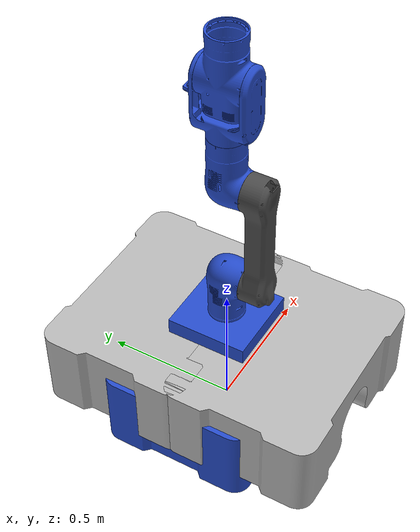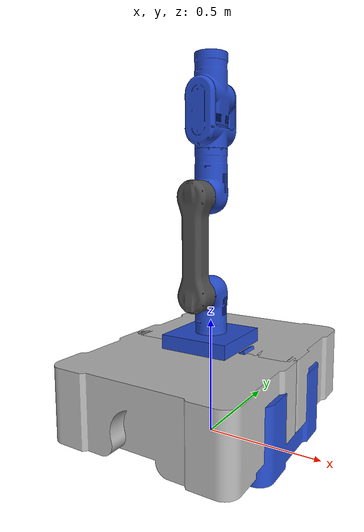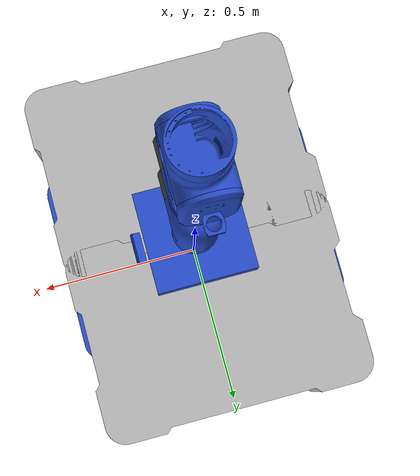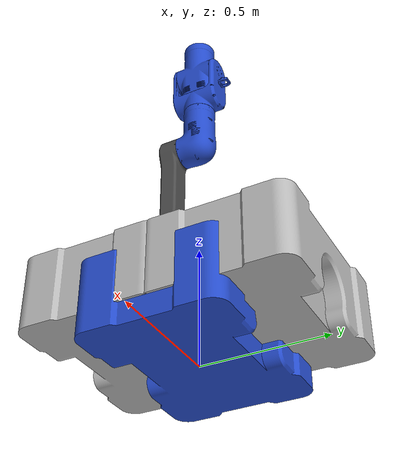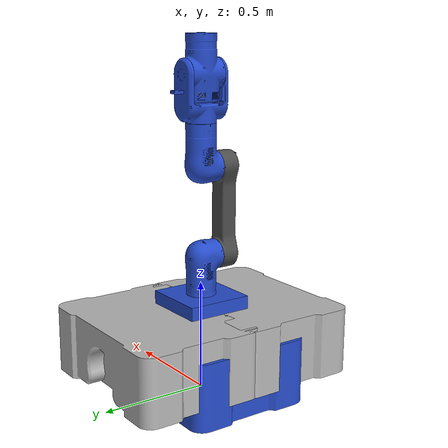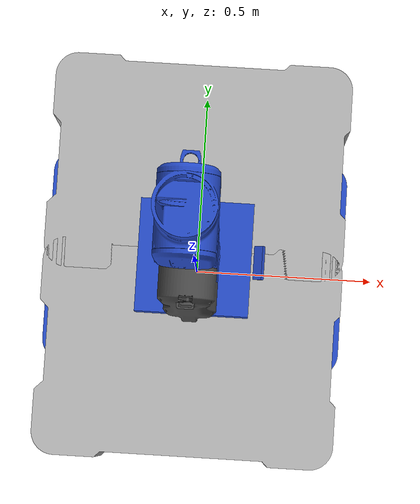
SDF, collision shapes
<sdf version='1.7'>
  <model name='relax'>
    <joint name='world_joint' type='fixed'>
      <pose relative_to='__model__'>0 0 0 0 -0 0</pose>
      <parent>world</parent>
      <child>base_link</child>
    </joint>
    <link name='base_link'>
      <pose relative_to='world_joint'>0 0 0 0 -0 0</pose>
      <inertial>
        <pose>0.00099 -0.001335 0.035182 0 -0 0</pose>
        <mass>107.467</mass>
        <inertia>
          <ixx>19.0537</ixx>
          <ixy>-0.00172707</ixy>
          <ixz>-0.0386888</ixz>
          <iyy>19.0565</iyy>
          <iyz>0.0869808</iyz>
          <izz>17.2117</izz>
        </inertia>
      </inertial>
      <collision name='base_link_fixed_joint_lump__mobile_base_link_collision'>
        <pose>0 0 0 0 -0 0</pose>
        <geometry>
          <mesh>
            <scale>0.001 0.001 0.001</scale>
            <uri>model://relax_urdf/meshes/mir_base.stl</uri>
          </mesh>
        </geometry>
      </collision>
      <collision name='base_link_fixed_joint_lump__control_box_collision_1'>
        <pose>0 0 0.375 0 -0 0</pose>
        <geometry>
          <box>
            <size>0.3 0.3 0.15</size>
          </box>
        </geometry>
      </collision>
      <collision name='base_link_fixed_joint_lump__D435i_camera_link_collision_2'>
        <pose>0.174007 0 0.38597 0 -0.5 0</pose>
        <geometry>
          <box>
            <size>0.02505 0.09 0.025</size>
          </box>
        </geometry>
        <surface>
          <contact>
            <ode>
              <kp>1e+13</kp>
              <kd>1</kd>
            </ode>
          </contact>
          <friction>
            <ode>
              <mu2>1</mu2>
              <fdir1>0 0 0</fdir1>
            </ode>
          </friction>
        </surface>
      </collision>
      <collision name='base_link_fixed_joint_lump__relax_link1_collision_3'>
        <pose>0 0 0.375 -3.14159 0 0</pose>
        <geometry>
          <mesh>
            <scale>0.001 0.001 0.001</scale>
            <uri>model://relax_urdf/meshes/mesh_link1.stl</uri>
          </mesh>
        </geometry>
        <surface>
          <contact>
            <ode/>
          </contact>
          <friction>
            <ode/>
          </friction>
        </surface>
      </collision>
      <visual name='base_link_fixed_joint_lump__mobile_base_link_visual'>
        <pose>0 0 0 0 -0 0</pose>
        <geometry>
          <mesh>
            <scale>0.001 0.001 0.001</scale>
            <uri>model://relax_urdf/meshes/mir_base.stl</uri>
          </mesh>
        </geometry>
      </visual>
      <visual name='base_link_fixed_joint_lump__control_box_visual_1'>
        <pose>0 0 0.375 0 -0 0</pose>
        <geometry>
          <box>
            <size>0.3 0.3 0.15</size>
          </box>
        </geometry>
      </visual>
      <visual name='base_link_fixed_joint_lump__D435i_camera_link_visual_2'>
        <pose>0.187083 0 0.393113 1.0708 -0 1.5708</pose>
        <geometry>
          <mesh>
            <scale>1 1 1</scale>
            <uri>model://realsense2_description/meshes/d435.dae</uri>
          </mesh>
        </geometry>
      </visual>
      <visual name='base_link_fixed_joint_lump__relax_link1_visual_3'>
        <pose>0 0 0.375 -3.14159 0 0</pose>
        <geometry>
          <mesh>
            <scale>0.001 0.001 0.001</scale>
            <uri>model://relax_urdf/meshes/mesh_link1.stl</uri>
          </mesh>
        </geometry>
        <material>
          <script>
            <name>Gazebo/Blue</name>
            <uri>file://media/materials/scripts/gazebo.material</uri>
          </script>
        </material>
      </visual>
      <self_collide>0</self_collide>
      <enable_wind>0</enable_wind>
      <kinematic>0</kinematic>
      <sensor name='D435i_cameracolor' type='camera'>
        <camera name='D435i_camera'>
          <horizontal_fov>1.21126</horizontal_fov>
          <image>
            <width>1280</width>
            <height>720</height>
            <format>RGB_INT8</format>
          </image>
          <clip>
            <near>0.1</near>
            <far>100</far>
          </clip>
          <noise>
            <type>gaussian</type>
            <mean>0</mean>
            <stddev>0.007</stddev>
          </noise>
        </camera>
        <always_on>1</always_on>
        <update_rate>30</update_rate>
        <visualize>0</visualize>
        <pose>0.174007 0.0175 0.38597 0 -0.5 0</pose>
      </sensor>
      <sensor name='D435i_cameraired1' type='camera'>
        <camera name='D435i_camera'>
          <horizontal_fov>1.48702</horizontal_fov>
          <image>
            <width>1280</width>
            <height>720</height>
            <format>L_INT8</format>
          </image>
          <clip>
            <near>0.1</near>
            <far>100</far>
          </clip>
          <noise>
            <type>gaussian</type>
            <mean>0</mean>
            <stddev>0.05</stddev>
          </noise>
        </camera>
        <always_on>1</always_on>
        <update_rate>90</update_rate>
        <visualize>0</visualize>
        <pose>0.174007 0.0175 0.38597 0 -0.5 0</pose>
      </sensor>
      <sensor name='D435i_cameraired2' type='camera'>
        <camera name='D435i_camera'>
          <horizontal_fov>1.48702</horizontal_fov>
          <image>
            <width>1280</width>
            <height>720</height>
            <format>L_INT8</format>
          </image>
          <clip>
            <near>0.1</near>
            <far>100</far>
          </clip>
          <noise>
            <type>gaussian</type>
            <mean>0</mean>
            <stddev>0.05</stddev>
          </noise>
        </camera>
        <always_on>1</always_on>
        <update_rate>90</update_rate>
        <visualize>0</visualize>
        <pose>0.174007 0.0175 0.38597 0 -0.5 0</pose>
      </sensor>
      <sensor name='D435i_cameradepth' type='depth'>
        <camera name='D435i_camera'>
          <horizontal_fov>1.21126</horizontal_fov>
          <image>
            <width>1280</width>
            <height>720</height>
          </image>
          <clip>
            <near>0.1</near>
            <far>100</far>
          </clip>
          <noise>
            <type>gaussian</type>
            <mean>0</mean>
            <stddev>0.1</stddev>
          </noise>
        </camera>
        <always_on>1</always_on>
        <update_rate>30</update_rate>
        <visualize>0</visualize>
        <pose>0.174007 0.0175 0.38597 0 -0.5 0</pose>
      </sensor>
      <sensor name='D435i_cameraaccel' type='imu'>
        <always_on>1</always_on>
        <update_rate>300</update_rate>
        <topic>D435i_camera/accel/sample</topic>
        <plugin name='D435i/D435i_camera_accel_plugin' filename='librealsense_gazebo_accel_sensor.so'>
          <topicName>D435i_camera/accel/sample</topicName>
          <bodyName>D435i_camera_link</bodyName>
          <updateRateHZ>300</updateRateHZ>
          <gaussianNoise>0.1</gaussianNoise>
          <xyzOffset>0 0 0</xyzOffset>
          <rpyOffset>0 0 0</rpyOffset>
          <frameName>D435i_camera_accel_optical_frame</frameName>
          <initialOrientationAsReference>0</initialOrientationAsReference>
        </plugin>
        <pose>0.174007 0.0175 0.38597 0 -0.5 0</pose>
      </sensor>
      <sensor name='D435i_cameragyro' type='imu'>
        <always_on>1</always_on>
        <update_rate>300</update_rate>
        <topic>D435i_camera/gyro/sample</topic>
        <plugin name='D435i/D435i_camera_gyro_plugin' filename='librealsense_gazebo_gyro_sensor.so'>
          <topicName>D435i_camera/gyro/sample</topicName>
          <bodyName>D435i_camera_link</bodyName>
          <updateRateHZ>300</updateRateHZ>
          <gaussianNoise>0.1</gaussianNoise>
          <xyzOffset>0 0 0</xyzOffset>
          <rpyOffset>0 0 0</rpyOffset>
          <frameName>D435i_camera_gyro_optical_frame</frameName>
          <initialOrientationAsReference>0</initialOrientationAsReference>
        </plugin>
        <pose>0.174007 0.0175 0.38597 0 -0.5 0</pose>
      </sensor>
    </link>
    <joint name='joint1' type='revolute'>
      <pose relative_to='base_link'>0 -0.13166 0.62466 -3.14159 0 0</pose>
      <parent>base_link</parent>
      <child>relax_link2</child>
      <axis>
        <xyz>0 1 0</xyz>
        <limit>
          <lower>-3.14</lower>
          <upper>3.14</upper>
          <effort>147</effort>
          <velocity>3.86</velocity>
        </limit>
        <dynamics>
          <damping>0.2</damping>
          <friction>10</friction>
          <spring_reference>0</spring_reference>
          <spring_stiffness>0</spring_stiffness>
        </dynamics>
      </axis>
      <physics>
        <provide_feedback>1</provide_feedback>
        <ode>
          <implicit_spring_damper>1</implicit_spring_damper>
          <cfm_damping>1</cfm_damping>
          <limit>
            <cfm>0</cfm>
            <erp>0.2</erp>
          </limit>
          <provide_feedback>1</provide_feedback>
        </ode>
      </physics>
    </joint>
    <link name='relax_link2'>
      <pose relative_to='joint1'>0 0 0 0 -0 0</pose>
      <inertial>
        <pose>0 -0.007172 -0.200007 0 -0 0</pose>
        <mass>1.99897</mass>
        <inertia>
          <ixx>0.0495895</ixx>
          <ixy>-2.38222e-08</ixy>
          <ixz>0.000234769</ixz>
          <iyy>0.0511116</iyy>
          <iyz>7.76985e-07</iyz>
          <izz>0.0040703</izz>
        </inertia>
      </inertial>
      <collision name='relax_link2_collision'>
        <pose>0 0 0 0 -0 0</pose>
        <geometry>
          <mesh>
            <scale>0.001 0.001 0.001</scale>
            <uri>model://relax_urdf/meshes/mesh_link2.stl</uri>
          </mesh>
        </geometry>
        <surface>
          <contact>
            <ode/>
          </contact>
          <friction>
            <ode/>
          </friction>
        </surface>
      </collision>
      <visual name='relax_link2_visual'>
        <pose>0 0 0 0 -0 0</pose>
        <geometry>
          <mesh>
            <scale>0.001 0.001 0.001</scale>
            <uri>model://relax_urdf/meshes/mesh_link2.stl</uri>
          </mesh>
        </geometry>
        <material>
          <script>
            <name>Gazebo/DarkGrey</name>
            <uri>file://media/materials/scripts/gazebo.material</uri>
          </script>
        </material>
      </visual>
    </link>
    <joint name='joint2' type='revolute'>
      <pose relative_to='relax_link2'>0 0 -0.4 0 -0 0</pose>
      <parent>relax_link2</parent>
      <child>relax_link3</child>
      <axis>
        <xyz>0 1 0</xyz>
        <limit>
          <lower>-3.14</lower>
          <upper>3.14</upper>
          <effort>147</effort>
          <velocity>3.86</velocity>
        </limit>
        <dynamics>
          <damping>0.2</damping>
          <friction>10</friction>
          <spring_reference>0</spring_reference>
          <spring_stiffness>0</spring_stiffness>
        </dynamics>
      </axis>
      <physics>
        <provide_feedback>1</provide_feedback>
        <ode>
          <implicit_spring_damper>1</implicit_spring_damper>
          <cfm_damping>1</cfm_damping>
          <limit>
            <cfm>0</cfm>
            <erp>0.2</erp>
          </limit>
          <provide_feedback>1</provide_feedback>
        </ode>
      </physics>
    </joint>
    <link name='relax_link3'>
      <pose relative_to='joint2'>0 0 0 0 -0 0</pose>
      <inertial>
        <pose>-0.002105 -0.106386 -0.074903 0 -0 0</pose>
        <mass>5.88388</mass>
        <inertia>
          <ixx>0.0610436</ixx>
          <ixy>-0.000153409</ixy>
          <ixz>-0.000178332</ixz>
          <iyy>0.0536013</iyy>
          <iyz>-0.0110909</iyz>
          <izz>0.0173808</izz>
        </inertia>
      </inertial>
      <collision name='relax_link3_collision'>
        <pose>0 0 0 0 -0 0</pose>
        <geometry>
          <mesh>
            <scale>0.001 0.001 0.001</scale>
            <uri>model://relax_urdf/meshes/mesh_link3.stl</uri>
          </mesh>
        </geometry>
        <surface>
          <contact>
            <ode/>
          </contact>
          <friction>
            <ode/>
          </friction>
        </surface>
      </collision>
      <visual name='relax_link3_visual'>
        <pose>0 0 0 0 -0 0</pose>
        <geometry>
          <mesh>
            <scale>0.001 0.001 0.001</scale>
            <uri>model://relax_urdf/meshes/mesh_link3.stl</uri>
          </mesh>
        </geometry>
        <material>
          <script>
            <name>Gazebo/Blue</name>
            <uri>file://media/materials/scripts/gazebo.material</uri>
          </script>
        </material>
      </visual>
    </link>
    <joint name='joint3' type='revolute'>
      <pose relative_to='relax_link3'>0 -0.13166 -0.24966 0 -0 0</pose>
      <parent>relax_link3</parent>
      <child>relax_link4</child>
      <axis>
        <xyz>0 0 1</xyz>
        <limit>
          <lower>-3.14</lower>
          <upper>3.14</upper>
          <effort>147</effort>
          <velocity>3.86</velocity>
        </limit>
        <dynamics>
          <damping>0.2</damping>
          <friction>10</friction>
          <spring_reference>0</spring_reference>
          <spring_stiffness>0</spring_stiffness>
        </dynamics>
      </axis>
      <physics>
        <provide_feedback>1</provide_feedback>
        <ode>
          <implicit_spring_damper>1</implicit_spring_damper>
          <cfm_damping>1</cfm_damping>
          <limit>
            <cfm>0</cfm>
            <erp>0.2</erp>
          </limit>
          <provide_feedback>1</provide_feedback>
        </ode>
      </physics>
    </joint>
    <link name='relax_link4'>
      <pose relative_to='joint3'>0 0 0 0 -0 0</pose>
      <inertial>
        <pose>0.000245 -0.001073 -0.049015 0 -0 0</pose>
        <mass>1.39822</mass>
        <inertia>
          <ixx>0.0146673</ixx>
          <ixy>-2.0411e-05</ixy>
          <ixz>-4.47696e-05</ixz>
          <iyy>0.00865986</iyy>
          <iyz>-8.3199e-05</iyz>
          <izz>0.0104509</izz>
        </inertia>
      </inertial>
      <collision name='relax_link4_collision'>
        <pose>0 0 0 0 -0 0</pose>
        <geometry>
          <mesh>
            <scale>0.001 0.001 0.001</scale>
            <uri>model://relax_urdf/meshes/mesh_link4.stl</uri>
          </mesh>
        </geometry>
        <surface>
          <contact>
            <ode/>
          </contact>
          <friction>
            <ode/>
          </friction>
        </surface>
      </collision>
      <visual name='relax_link4_visual'>
        <pose>0 0 0 0 -0 0</pose>
        <geometry>
          <mesh>
            <scale>0.001 0.001 0.001</scale>
            <uri>model://relax_urdf/meshes/mesh_link4.stl</uri>
          </mesh>
        </geometry>
        <material>
          <script>
            <name>Gazebo/Blue</name>
            <uri>file://media/materials/scripts/gazebo.material</uri>
          </script>
        </material>
      </visual>
    </link>
    <joint name='joint4' type='revolute'>
      <pose relative_to='relax_link4'>0 -0.08816 -0.1535 0 0 -3.14159</pose>
      <parent>relax_link4</parent>
      <child>relax_link5</child>
      <axis>
        <xyz>0 1 0</xyz>
        <limit>
          <lower>-3.14</lower>
          <upper>3.14</upper>
          <effort>147</effort>
          <velocity>3.86</velocity>
        </limit>
        <dynamics>
          <damping>0.2</damping>
          <friction>10</friction>
          <spring_reference>0</spring_reference>
          <spring_stiffness>0</spring_stiffness>
        </dynamics>
      </axis>
      <physics>
        <provide_feedback>1</provide_feedback>
        <ode>
          <implicit_spring_damper>1</implicit_spring_damper>
          <cfm_damping>1</cfm_damping>
          <limit>
            <cfm>0</cfm>
            <erp>0.2</erp>
          </limit>
          <provide_feedback>1</provide_feedback>
        </ode>
      </physics>
    </joint>
    <link name='relax_link5'>
      <pose relative_to='joint4'>0 0 0 0 -0 0</pose>
      <inertial>
        <pose>-0.001323 -0.084683 -0.053211 0 -0 0</pose>
        <mass>5.79238</mass>
        <inertia>
          <ixx>0.0551095</ixx>
          <ixy>-0.000140038</ixy>
          <ixz>0.000214707</ixz>
          <iyy>0.0513094</iyy>
          <iyz>-0.00102892</iyz>
          <izz>0.0138048</izz>
        </inertia>
      </inertial>
      <collision name='relax_link5_collision'>
        <pose>0 0 0 0 -0 0</pose>
        <geometry>
          <mesh>
            <scale>0.001 0.001 0.001</scale>
            <uri>model://relax_urdf/meshes/mesh_link5.stl</uri>
          </mesh>
        </geometry>
        <surface>
          <contact>
            <ode/>
          </contact>
          <friction>
            <ode/>
          </friction>
        </surface>
      </collision>
      <visual name='relax_link5_visual'>
        <pose>0 0 0 0 -0 0</pose>
        <geometry>
          <mesh>
            <scale>0.001 0.001 0.001</scale>
            <uri>model://relax_urdf/meshes/mesh_link5.stl</uri>
          </mesh>
        </geometry>
        <material>
          <script>
            <name>Gazebo/Blue</name>
            <uri>file://media/materials/scripts/gazebo.material</uri>
          </script>
        </material>
      </visual>
    </link>
    <joint name='j_left_wheel_yaw' type='revolute'>
      <pose relative_to='base_link'>-0.004487 0.25 0.09 0 -0 0</pose>
      <parent>base_link</parent>
      <child>left_wheel_yaw</child>
      <axis>
        <xyz>0 0 1</xyz>
        <limit>
          <lower>-1</lower>
          <upper>1</upper>
          <effort>35</effort>
          <velocity>20</velocity>
        </limit>
        <dynamics>
          <spring_reference>0</spring_reference>
          <spring_stiffness>0</spring_stiffness>
        </dynamics>
      </axis>
    </joint>
    <link name='left_wheel_yaw'>
      <pose relative_to='j_left_wheel_yaw'>0 0 0 0 -0 0</pose>
      <inertial>
        <pose>0 0 0 0 -0 0</pose>
        <mass>1</mass>
        <inertia>
          <ixx>0.17</ixx>
          <ixy>0</ixy>
          <ixz>0</ixz>
          <iyy>0.17</iyy>
          <iyz>0</iyz>
          <izz>0.17</izz>
        </inertia>
      </inertial>
      <collision name='left_wheel_yaw_collision'>
        <pose>0 0 0 0 -0 0</pose>
        <geometry>
          <box>
            <size>0.001 0.001 0.001</size>
          </box>
        </geometry>
      </collision>
      <visual name='left_wheel_yaw_visual'>
        <pose>0 0 0 0 -0 0</pose>
        <geometry>
          <box>
            <size>0.001 0.001 0.001</size>
          </box>
        </geometry>
      </visual>
    </link>
    <joint name='j_left_wheel_roll' type='revolute'>
      <pose relative_to='left_wheel_yaw'>0 0 0 0 -0 0</pose>
      <parent>left_wheel_yaw</parent>
      <child>left_wheel</child>
      <axis>
        <xyz>0 1 0</xyz>
        <limit>
          <effort>35</effort>
          <velocity>20</velocity>
          <lower>-1e+16</lower>
          <upper>1e+16</upper>
        </limit>
        <dynamics>
          <spring_reference>0</spring_reference>
          <spring_stiffness>0</spring_stiffness>
        </dynamics>
      </axis>
    </joint>
    <link name='left_wheel'>
      <pose relative_to='j_left_wheel_roll'>0 0 0 0 -0 0</pose>
      <inertial>
        <pose>0 0 0 0 -0 0</pose>
        <mass>1</mass>
        <inertia>
          <ixx>0.17</ixx>
          <ixy>0</ixy>
          <ixz>0</ixz>
          <iyy>0.17</iyy>
          <iyz>0</iyz>
          <izz>0.17</izz>
        </inertia>
      </inertial>
      <collision name='left_wheel_collision'>
        <pose>0 0 0 0 -0 0</pose>
        <geometry>
          <mesh>
            <scale>0.001 0.001 0.001</scale>
            <uri>model://relax_urdf/meshes/mir_base.stl</uri>
          </mesh>
        </geometry>
      </collision>
      <visual name='left_wheel_visual'>
        <pose>0 0 0 0 -0 0</pose>
        <geometry>
          <mesh>
            <scale>0.001 0.001 0.001</scale>
            <uri>model://relax_urdf/meshes/mesh_left_wheel.stl</uri>
          </mesh>
        </geometry>
      </visual>
    </link>
    <joint name='j_right_wheel_yaw' type='revolute'>
      <pose relative_to='base_link'>-0.004487 -0.25 0.09 0 -0 0</pose>
      <parent>base_link</parent>
      <child>right_wheel_yaw</child>
      <axis>
        <xyz>0 0 1</xyz>
        <limit>
          <lower>-1</lower>
          <upper>1</upper>
          <effort>35</effort>
          <velocity>20</velocity>
        </limit>
        <dynamics>
          <spring_reference>0</spring_reference>
          <spring_stiffness>0</spring_stiffness>
        </dynamics>
      </axis>
    </joint>
    <link name='right_wheel_yaw'>
      <pose relative_to='j_right_wheel_yaw'>0 0 0 0 -0 0</pose>
      <inertial>
        <pose>0 0 0 0 -0 0</pose>
        <mass>1</mass>
        <inertia>
          <ixx>0.17</ixx>
          <ixy>0</ixy>
          <ixz>0</ixz>
          <iyy>0.17</iyy>
          <iyz>0</iyz>
          <izz>0.17</izz>
        </inertia>
      </inertial>
      <collision name='right_wheel_yaw_collision'>
        <pose>0 0 0 0 -0 0</pose>
        <geometry>
          <box>
            <size>0.001 0.001 0.001</size>
          </box>
        </geometry>
      </collision>
      <visual name='right_wheel_yaw_visual'>
        <pose>0 0 0 0 -0 0</pose>
        <geometry>
          <box>
            <size>0.001 0.001 0.001</size>
          </box>
        </geometry>
      </visual>
    </link>
    <joint name='j_right_wheel_roll' type='revolute'>
      <pose relative_to='right_wheel_yaw'>0 0 0 0 -0 0</pose>
      <parent>right_wheel_yaw</parent>
      <child>right_wheel</child>
      <axis>
        <xyz>0 1 0</xyz>
        <limit>
          <effort>35</effort>
          <velocity>20</velocity>
          <lower>-1e+16</lower>
          <upper>1e+16</upper>
        </limit>
        <dynamics>
          <spring_reference>0</spring_reference>
          <spring_stiffness>0</spring_stiffness>
        </dynamics>
      </axis>
    </joint>
    <link name='right_wheel'>
      <pose relative_to='j_right_wheel_roll'>0 0 0 0 -0 0</pose>
      <inertial>
        <pose>0 0 0 0 -0 0</pose>
        <mass>1</mass>
        <inertia>
          <ixx>0.17</ixx>
          <ixy>0</ixy>
          <ixz>0</ixz>
          <iyy>0.17</iyy>
          <iyz>0</iyz>
          <izz>0.17</izz>
        </inertia>
      </inertial>
      <collision name='right_wheel_collision'>
        <pose>0 0 0 0 -0 0</pose>
        <geometry>
          <mesh>
            <scale>0.001 0.001 0.001</scale>
            <uri>model://relax_urdf/meshes/mir_base.stl</uri>
          </mesh>
        </geometry>
      </collision>
      <visual name='right_wheel_visual'>
        <pose>0 0 0 0 -0 0</pose>
        <geometry>
          <mesh>
            <scale>0.001 0.001 0.001</scale>
            <uri>model://relax_urdf/meshes/mesh_left_wheel.stl</uri>
          </mesh>
        </geometry>
      </visual>
    </link>
    <plugin name='D435i/D435i_camera' filename='librealsense_gazebo_plugin.so'>
      <prefix>D435i_camera</prefix>
      <colorUpdateRate>30</colorUpdateRate>
      <colorTopicName>color/image_raw</colorTopicName>
      <colorOpticalframeName>D435i_camera_color_optical_frame</colorOpticalframeName>
      <colorCameraInfoTopicName>color/camera_info</colorCameraInfoTopicName>
      <infraredUpdateRate>90</infraredUpdateRate>
      <infrared1TopicName>infra1/image_rect_raw</infrared1TopicName>
      <infrared2TopicName>infra2/image_rect_raw</infrared2TopicName>
      <infrared1CameraInfoTopicName>infra1/camera_info</infrared1CameraInfoTopicName>
      <infrared2CameraInfoTopicName>infra2/camera_info</infrared2CameraInfoTopicName>
      <infrared1OpticalframeName>D435i_camera_left_ir_optical_frame</infrared1OpticalframeName>
      <infrared2OpticalframeName>D435i_camera_right_ir_optical_frame</infrared2OpticalframeName>
      <rangeMinDepth>0.2</rangeMinDepth>
      <rangeMaxDepth>10.0</rangeMaxDepth>
      <depthUpdateRate>30</depthUpdateRate>
      <depthTopicName>aligned_depth_to_color/image_raw</depthTopicName>
      <depthCameraInfoTopicName>aligned_depth_to_color/camera_info</depthCameraInfoTopicName>
      <depthOpticalframeName>D435i_camera_color_optical_frame</depthOpticalframeName>
      <pointCloud>1</pointCloud>
      <pointCloudTopicName>depth/color/points</pointCloudTopicName>
      <pointCloudCutoff>0.5</pointCloudCutoff>
    </plugin>
    <static>0</static>
    <plugin name='xbot2_link_state_sensor' filename='libxbot2_gz_link_state_sensor.so'>
      <links>
        <link name='base_link'/>
        <link name='left_wheel'/>
      </links>
    </plugin>
    <plugin name='xbot2_joint_driver' filename='libxbot2_gz_joint_server.so'>
      <pid>
        <gain d='5' name='lowpwr_mot' p='50'/>
        <gain d='5' name='small_mot' p='250'/>
        <gain d='10' name='medium_mot' p='1000'/>
        <gain d='10' name='big_mot' p='3000'/>
        <gain d='10' name='wheel_mot' p='0'/>
        <pid name='j_left_wheel_roll' profile='wheel_mot'/>
        <pid name='j_right_wheel_roll' profile='wheel_mot'/>
        <pid name='joint1' profile='medium_mot'/>
        <pid name='joint2' profile='medium_mot'/>
        <pid name='joint3' profile='medium_mot'/>
        <pid name='joint4' profile='small_mot'/>
        <pid name='joint5' profile='small_mot'/>
      </pid>
    </plugin>
  </model>
</sdf>
